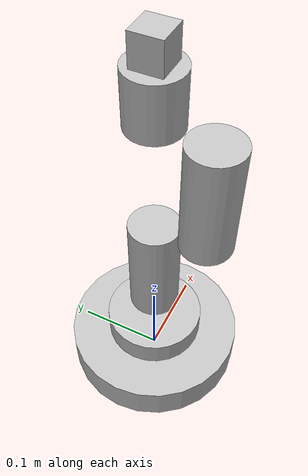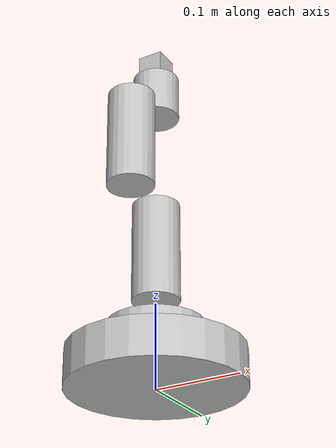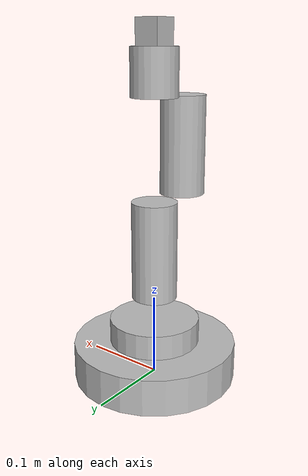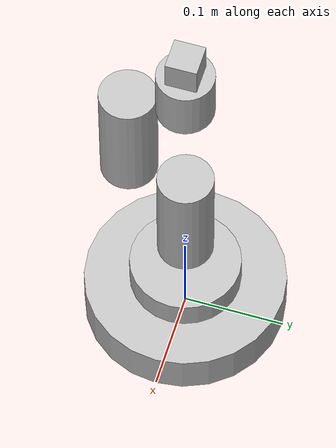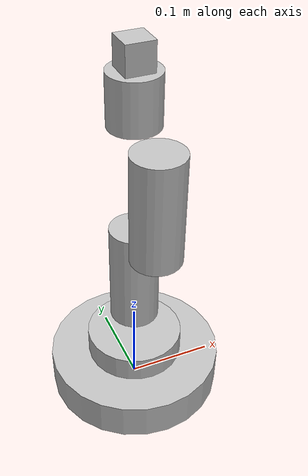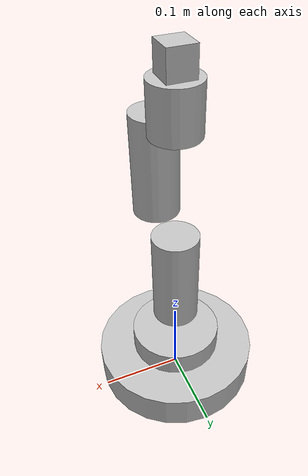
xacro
<?xml version="1.0"?>
<robot
	xmlns:xacro="http://www.ros.org/wiki/xacro"
	name="manipulator_model">

	<xacro:include filename="$(find arm_model)/xacro/macros.xacro" />

	<xacro:macro name="manipulator_model">
		<link name="world"/>
		<link name="rotate_moving_base">
			<inertial>
				<mass value="1.0"/>
				<origin rpy="0 0 0" xyz="0 0 0.0225"/>
				<xacro:cylinder_inertia mass="1" r="0.055" l="0.05" />
			</inertial>
		</link>
		<joint name="move_rotate" type="continuous">
			<axis xyz="0 0 1"/>
			<parent link="world"/>
			<child link="rotate_moving_base"/>
			<origin rpy="0 0 0" xyz="0.0 0.0 0.0"/>
		</joint>
		<link name="forward_moving_base">
			<inertial>
				<mass value="1.0"/>
				<origin rpy="0 0 0" xyz="0 0 0.0225"/>
				<xacro:cylinder_inertia mass="1" r="0.055" l="0.05" />
			</inertial>
		</link>
		<joint name="move_forward" type="prismatic">
			<axis xyz="1 0 0"/>
			<parent link="rotate_moving_base"/>
			<child link="forward_moving_base"/>
			<limit effort="1000.0" lower="-1" upper="1" velocity="0.5"/>
			<origin rpy="0 0 0" xyz="0.0 0.0 0.0"/>
		</joint>
		<joint name="fixed" type="fixed">
			<parent link="forward_moving_base"/>
			<child link="manipulator_base_link"/>
		</joint>
		<link name="manipulator_base_link">
			<visual>
				<geometry>
					<cylinder length="0.045" radius="0.1"/>
				</geometry>
				<material name="silver">
					<color rgba="0.75 0.75 0.75 1"/>
				</material>
				<origin rpy="0 0 0" xyz="0 0 0.0225"/>
			</visual>
			<collision>
				<geometry>
					<cylinder length="0.045" radius="0.1"/>
				</geometry>
				<origin rpy="0 0 0" xyz="0 0 0.0225"/>
			</collision>
			<inertial>
				<mass value="1.0"/>
				<origin rpy="0 0 0" xyz="0 0 0.0225"/>
				<xacro:cylinder_inertia mass="1" r="0.1" l="0.05" />
			</inertial>
		</link>
		<link name="turntable">
			<visual>
				<geometry>
					<cylinder length="0.03" radius="0.055"/>
				</geometry>
				<material name="silver">
					<color rgba="0.75 0.75 0.75 1"/>
				</material>
				<origin rpy="0 0 0" xyz="0 0 0.015"/>
			</visual>
			<collision>
				<geometry>
					<cylinder length="0.03" radius="0.055"/>
				</geometry>
				<origin rpy="0 0 0" xyz="0 0 0.015"/>
			</collision>
			<inertial>
				<mass value="1.0"/>
				<origin rpy="0 0 0" xyz="0 0 0.015"/>
				<xacro:cylinder_inertia mass="1" r="0.055" l="0.03" />
			</inertial>
		</link>
		<joint name="turn" type="continuous">
			<axis xyz="0 0 1"/>
			<parent link="manipulator_base_link"/>
			<child link="turntable"/>
			<origin rpy="0 0 0" xyz="0.0 0.0 0.045"/>
		</joint>
		<link name="upper_arm">
			<visual>
				<geometry>
					<cylinder length="0.12" radius="0.0275"/>
				</geometry>
				<material name="silver"/>
				<origin rpy="-1.5708 0 0" xyz="0 0.06 0"/>
			</visual>
			<collision>
				<geometry>
					<cylinder length="0.12" radius="0.0275"/>
				</geometry>
				<origin rpy="-1.5708 0 0" xyz="0 0.06 0"/>
			</collision>
			<inertial>
				<mass value="1.0"/>
				<origin rpy="-1.5708 0 0" xyz="0 0.06 0"/>
				<xacro:cylinder_inertia mass="1" r="0.0275" l="0.12" />
			</inertial>
		</link>
		<joint name="shoulder" type="continuous">
			<axis xyz="0 0 1"/>
			<parent link="turntable"/>
			<child link="upper_arm"/>
			<origin rpy="1.5708 0 0" xyz="0.0 0.0 0.0575"/>
		</joint>
		<link name="middle_arm">
			<visual>
				<geometry>
					<cylinder length="0.12" radius="0.0275"/>
				</geometry>
				<material name="silver"/>
				<origin rpy="-1.5708 0 0" xyz="0 0.06 0.0555"/>
			</visual>
			<collision>
				<geometry>
					<cylinder length="0.12" radius="0.0275"/>
				</geometry>
				<origin rpy="-1.5708 0 0" xyz="0 0.06 0.0555"/>
			</collision>
			<inertial>
				<mass value="1.0"/>
				<origin rpy="-1.5708 0 0" xyz="0 0.06 0.0555"/>
				<xacro:cylinder_inertia mass="1" r="0.0275" l="0.12" />
			</inertial>
		</link>
		<joint name="elbow" type="continuous">
			<axis xyz="0 0 1"/>
			<parent link="upper_arm"/>
			<child link="middle_arm"/>
			<origin rpy="0 0 0" xyz="0 0.12 0"/>
		</joint>
		<link name="lower_arm">
			<visual>
				<geometry>
					<cylinder length="0.055" radius="0.0275"/>
				</geometry>
				<material name="silver"/>
				<origin rpy="-1.5708 0 0" xyz="0 0.0275 0"/>
			</visual>
			<collision>
				<geometry>
					<cylinder length="0.055" radius="0.0275"/>
				</geometry>
				<origin rpy="-1.5708 0 0" xyz="0 0.0275 0"/>
			</collision>
			<inertial>
				<mass value="1.0"/>
				<origin rpy="-1.5708 0 0" xyz="0 0.0275 0"/>
				<xacro:cylinder_inertia mass="1" r="0.0275" l="0.055" />
			</inertial>
		</link>
		<joint name="another_elbow" type="continuous">
			<axis xyz="0 0 1"/>
			<parent link="middle_arm"/>
			<child link="lower_arm"/>
			<origin rpy="0 0 0" xyz="0 0.12 0"/>
		</joint>
		<link name="hand">
			<visual>
				<geometry>
					<box size="0.03 0.03 0.03"/>
				</geometry>
				<material name="silver"/>
				<origin rpy="0 0 0" xyz="0 0 0.015"/>
			</visual>
			<collision>
				<geometry>
					<box size="0.03 0.03 0.03"/>
				</geometry>
				<origin rpy="0 0 0" xyz="0 0 0.015"/>
			</collision>
			<inertial>
				<mass value="1.0"/>
				<origin rpy="0 0 0" xyz="0 0 0.015"/>
				<xacro:box_inertia mass="1" x="0.03" y="0.03" z="0.03" />
			</inertial>
		</link>
		<joint name="wrist" type="fixed">
			<parent link="lower_arm"/>
			<child link="hand"/>
			<origin rpy="-1.5708 0 0" xyz="0.0 0.055 0.0"/>
		</joint>

		<!--Transmission Descriptions-->
		<transmission name="tran0">
			<type>transmission_interface/SimpleTransmission</type>
			<joint name="turn">
				<hardwareInterface>PositionJointInterface</hardwareInterface>
			</joint>
			<actuator name="motor0">
				<hardwareInterface>PositionJointInterface</hardwareInterface>
				<mechanicalReduction>1</mechanicalReduction>
			</actuator>
		</transmission>
		<transmission name="tran1">
			<type>transmission_interface/SimpleTransmission</type>
			<joint name="shoulder">
				<hardwareInterface>PositionJointInterface</hardwareInterface>
			</joint>
			<actuator name="motor1">
				<hardwareInterface>PositionJointInterface</hardwareInterface>
				<mechanicalReduction>1</mechanicalReduction>
			</actuator>
		</transmission>
		<transmission name="tran2">
			<type>transmission_interface/SimpleTransmission</type>
			<joint name="elbow">
				<hardwareInterface>PositionJointInterface</hardwareInterface>
			</joint>
			<actuator name="motor2">
				<hardwareInterface>PositionJointInterface</hardwareInterface>
				<mechanicalReduction>1</mechanicalReduction>
			</actuator>
		</transmission>
		<transmission name="tran3">
			<type>transmission_interface/SimpleTransmission</type>
			<joint name="another_elbow">
				<hardwareInterface>PositionJointInterface</hardwareInterface>
			</joint>
			<actuator name="motor3">
				<hardwareInterface>PositionJointInterface</hardwareInterface>
				<mechanicalReduction>1</mechanicalReduction>
			</actuator>
		</transmission>
		<transmission name="tran4">
			<type>transmission_interface/SimpleTransmission</type>
			<joint name="move_rotate">
				<hardwareInterface>PositionJointInterface</hardwareInterface>
			</joint>
			<actuator name="motor4">
				<hardwareInterface>PositionJointInterface</hardwareInterface>
				<mechanicalReduction>1</mechanicalReduction>
			</actuator>
		</transmission>
		<transmission name="tran5">
			<type>transmission_interface/SimpleTransmission</type>
			<joint name="move_forward">
				<hardwareInterface>PositionJointInterface</hardwareInterface>
			</joint>
			<actuator name="motor5">
				<hardwareInterface>PositionJointInterface</hardwareInterface>
				<mechanicalReduction>1</mechanicalReduction>
			</actuator>
		</transmission>

		<!-- Gazebo Plugins -->
		<gazebo>
			<!-- ros_control plugin -->
			<plugin name="control" filename="libgazebo_ros_control.so"/>
			<!-- joint_state_publisher plugin -->
			<plugin name="joint_state_publisher" filename="libgazebo_ros_joint_state_publisher.so">
					<jointName>turn, shoulder, elbow, another_elbow, move_rotate, move_forward</jointName>
			</plugin>
		</gazebo>
	</xacro:macro>

	<xacro:manipulator_model/>
</robot>
